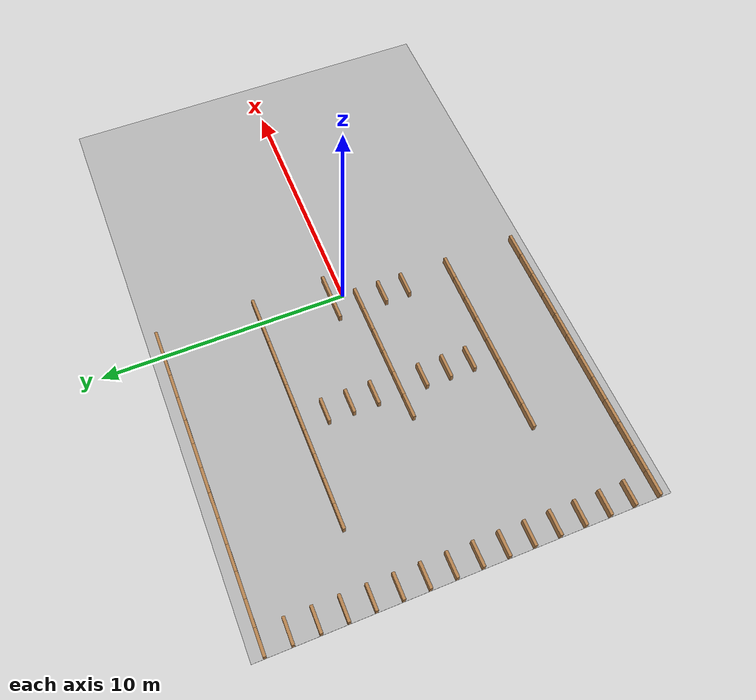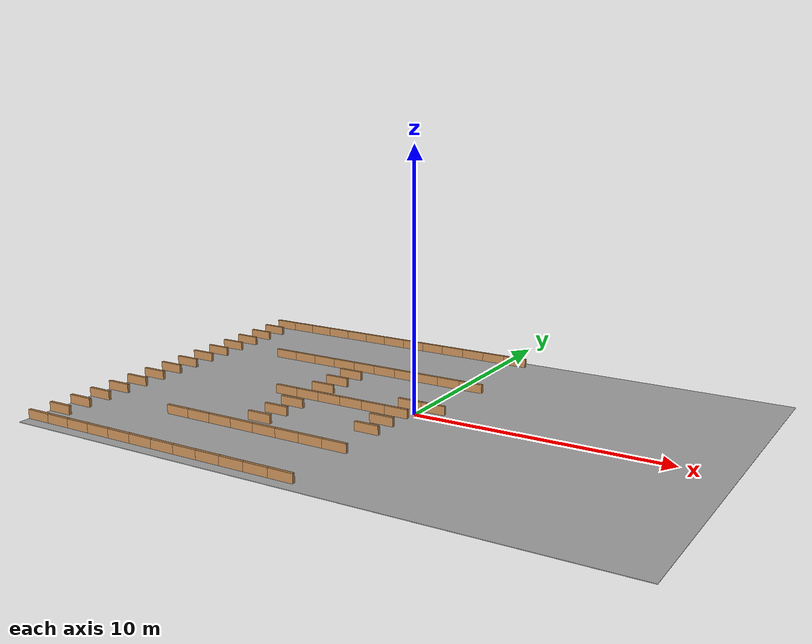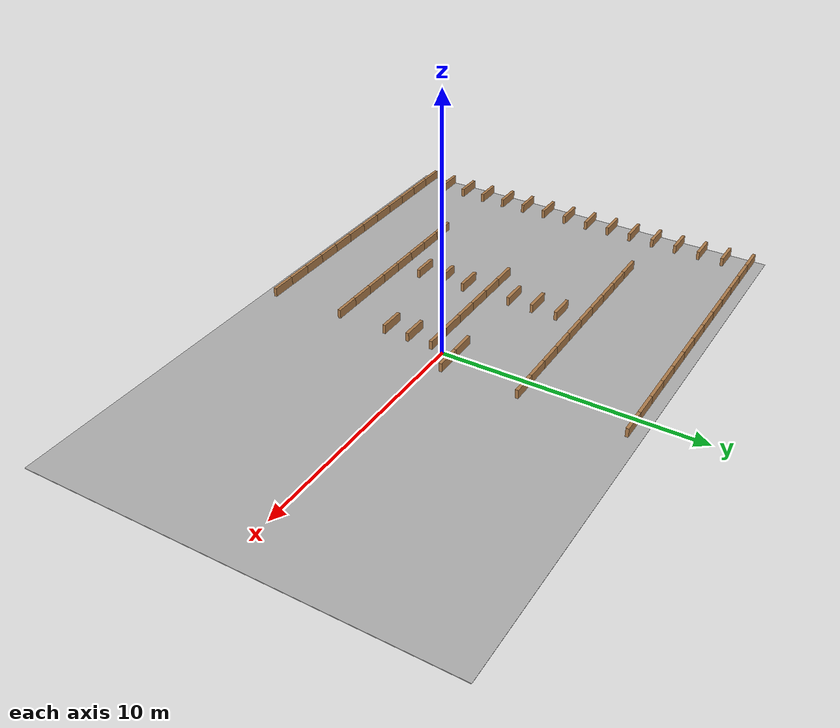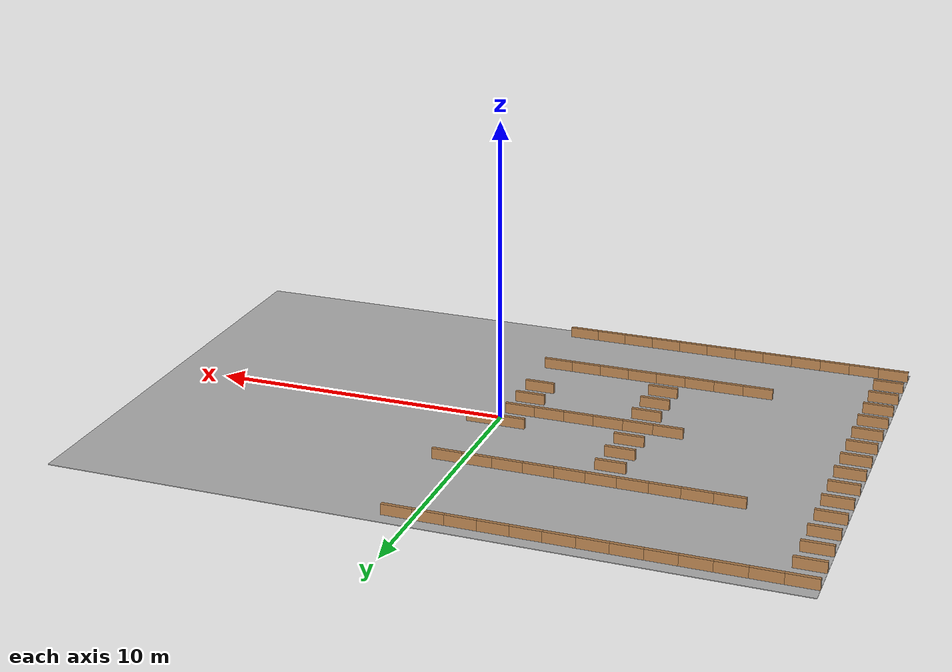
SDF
<sdf version="1.7">
 <world name="default">
  <include><uri>model://sun</uri></include>
  <model name="floor">
   <pose>0 0 -0.01 0 0 0</pose>
   <static>true</static>
   <link name="link">
    <collision name="col"><geometry><box><size>24.0 16.0 0.02</size></box></geometry></collision>
    <visual name="vis">
     <geometry><box><size>24.0 16.0 0.02</size></box></geometry>
     <material>
      <ambient>0.3 0.3 0.3 1</ambient>
      <diffuse>0.7 0.7 0.7 1</diffuse>
      <specular>0.1 0.1 0.1 1</specular>
     </material>
    </visual>
   </link>
  </model>
  <model name="wall_r0_c0">
   <pose>-11.5 7.5 0.175 0 0 0</pose>
   <static>true</static>
   <link name="link">
    <collision name="col"><geometry><box><size>1.0 0.12 0.35</size></box></geometry></collision>
    <visual name="vis">
     <geometry><box><size>1.0 0.12 0.35</size></box></geometry>
     <material>
      <ambient>0.3 0.2 0.1 1</ambient>
      <diffuse>0.7 0.5 0.3 1</diffuse>
      <specular>0.1 0.1 0.1 1</specular>
     </material>
    </visual>
   </link>
  </model>
  <model name="wall_r0_c1">
   <pose>-10.5 7.5 0.175 0 0 0</pose>
   <static>true</static>
   <link name="link">
    <collision name="col"><geometry><box><size>1.0 0.12 0.35</size></box></geometry></collision>
    <visual name="vis">
     <geometry><box><size>1.0 0.12 0.35</size></box></geometry>
     <material>
      <ambient>0.3 0.2 0.1 1</ambient>
      <diffuse>0.7 0.5 0.3 1</diffuse>
      <specular>0.1 0.1 0.1 1</specular>
     </material>
    </visual>
   </link>
  </model>
  <model name="wall_r0_c2">
   <pose>-9.5 7.5 0.175 0 0 0</pose>
   <static>true</static>
   <link name="link">
    <collision name="col"><geometry><box><size>1.0 0.12 0.35</size></box></geometry></collision>
    <visual name="vis">
     <geometry><box><size>1.0 0.12 0.35</size></box></geometry>
     <material>
      <ambient>0.3 0.2 0.1 1</ambient>
      <diffuse>0.7 0.5 0.3 1</diffuse>
      <specular>0.1 0.1 0.1 1</specular>
     </material>
    </visual>
   </link>
  </model>
  <model name="wall_r0_c3">
   <pose>-8.5 7.5 0.175 0 0 0</pose>
   <static>true</static>
   <link name="link">
    <collision name="col"><geometry><box><size>1.0 0.12 0.35</size></box></geometry></collision>
    <visual name="vis">
     <geometry><box><size>1.0 0.12 0.35</size></box></geometry>
     <material>
      <ambient>0.3 0.2 0.1 1</ambient>
      <diffuse>0.7 0.5 0.3 1</diffuse>
      <specular>0.1 0.1 0.1 1</specular>
     </material>
    </visual>
   </link>
  </model>
  <model name="wall_r0_c4">
   <pose>-7.5 7.5 0.175 0 0 0</pose>
   <static>true</static>
   <link name="link">
    <collision name="col"><geometry><box><size>1.0 0.12 0.35</size></box></geometry></collision>
    <visual name="vis">
     <geometry><box><size>1.0 0.12 0.35</size></box></geometry>
     <material>
      <ambient>0.3 0.2 0.1 1</ambient>
      <diffuse>0.7 0.5 0.3 1</diffuse>
      <specular>0.1 0.1 0.1 1</specular>
     </material>
    </visual>
   </link>
  </model>
  <model name="wall_r0_c5">
   <pose>-6.5 7.5 0.175 0 0 0</pose>
   <static>true</static>
   <link name="link">
    <collision name="col"><geometry><box><size>1.0 0.12 0.35</size></box></geometry></collision>
    <visual name="vis">
     <geometry><box><size>1.0 0.12 0.35</size></box></geometry>
     <material>
      <ambient>0.3 0.2 0.1 1</ambient>
      <diffuse>0.7 0.5 0.3 1</diffuse>
      <specular>0.1 0.1 0.1 1</specular>
     </material>
    </visual>
   </link>
  </model>
  <model name="wall_r0_c6">
   <pose>-5.5 7.5 0.175 0 0 0</pose>
   <static>true</static>
   <link name="link">
    <collision name="col"><geometry><box><size>1.0 0.12 0.35</size></box></geometry></collision>
    <visual name="vis">
     <geometry><box><size>1.0 0.12 0.35</size></box></geometry>
     <material>
      <ambient>0.3 0.2 0.1 1</ambient>
      <diffuse>0.7 0.5 0.3 1</diffuse>
      <specular>0.1 0.1 0.1 1</specular>
     </material>
    </visual>
   </link>
  </model>
  <model name="wall_r0_c7">
   <pose>-4.5 7.5 0.175 0 0 0</pose>
   <static>true</static>
   <link name="link">
    <collision name="col"><geometry><box><size>1.0 0.12 0.35</size></box></geometry></collision>
    <visual name="vis">
     <geometry><box><size>1.0 0.12 0.35</size></box></geometry>
     <material>
      <ambient>0.3 0.2 0.1 1</ambient>
      <diffuse>0.7 0.5 0.3 1</diffuse>
      <specular>0.1 0.1 0.1 1</specular>
     </material>
    </visual>
   </link>
  </model>
  <model name="wall_r0_c8">
   <pose>-3.5 7.5 0.175 0 0 0</pose>
   <static>true</static>
   <link name="link">
    <collision name="col"><geometry><box><size>1.0 0.12 0.35</size></box></geometry></collision>
    <visual name="vis">
     <geometry><box><size>1.0 0.12 0.35</size></box></geometry>
     <material>
      <ambient>0.3 0.2 0.1 1</ambient>
      <diffuse>0.7 0.5 0.3 1</diffuse>
      <specular>0.1 0.1 0.1 1</specular>
     </material>
    </visual>
   </link>
  </model>
  <model name="wall_r0_c9">
   <pose>-2.5 7.5 0.175 0 0 0</pose>
   <static>true</static>
   <link name="link">
    <collision name="col"><geometry><box><size>1.0 0.12 0.35</size></box></geometry></collision>
    <visual name="vis">
     <geometry><box><size>1.0 0.12 0.35</size></box></geometry>
     <material>
      <ambient>0.3 0.2 0.1 1</ambient>
      <diffuse>0.7 0.5 0.3 1</diffuse>
      <specular>0.1 0.1 0.1 1</specular>
     </material>
    </visual>
   </link>
  </model>
  <model name="wall_r0_c10">
   <pose>-1.5 7.5 0.175 0 0 0</pose>
   <static>true</static>
   <link name="link">
    <collision name="col"><geometry><box><size>1.0 0.12 0.35</size></box></geometry></collision>
    <visual name="vis">
     <geometry><box><size>1.0 0.12 0.35</size></box></geometry>
     <material>
      <ambient>0.3 0.2 0.1 1</ambient>
      <diffuse>0.7 0.5 0.3 1</diffuse>
      <specular>0.1 0.1 0.1 1</specular>
     </material>
    </visual>
   </link>
  </model>
  <model name="wall_r0_c11">
   <pose>-0.5 7.5 0.175 0 0 0</pose>
   <static>true</static>
   <link name="link">
    <collision name="col"><geometry><box><size>1.0 0.12 0.35</size></box></geometry></collision>
    <visual name="vis">
     <geometry><box><size>1.0 0.12 0.35</size></box></geometry>
     <material>
      <ambient>0.3 0.2 0.1 1</ambient>
      <diffuse>0.7 0.5 0.3 1</diffuse>
      <specular>0.1 0.1 0.1 1</specular>
     </material>
    </visual>
   </link>
  </model>
  <model name="wall_r0_c12">
   <pose>0.5 7.5 0.175 0 0 0</pose>
   <static>true</static>
   <link name="link">
    <collision name="col"><geometry><box><size>1.0 0.12 0.35</size></box></geometry></collision>
    <visual name="vis">
     <geometry><box><size>1.0 0.12 0.35</size></box></geometry>
     <material>
      <ambient>0.3 0.2 0.1 1</ambient>
      <diffuse>0.7 0.5 0.3 1</diffuse>
      <specular>0.1 0.1 0.1 1</specular>
     </material>
    </visual>
   </link>
  </model>
  <model name="wall_r1_c0">
   <pose>-11.5 6.5 0.175 0 0 0</pose>
   <static>true</static>
   <link name="link">
    <collision name="col"><geometry><box><size>1.0 0.12 0.35</size></box></geometry></collision>
    <visual name="vis">
     <geometry><box><size>1.0 0.12 0.35</size></box></geometry>
     <material>
      <ambient>0.3 0.2 0.1 1</ambient>
      <diffuse>0.7 0.5 0.3 1</diffuse>
      <specular>0.1 0.1 0.1 1</specular>
     </material>
    </visual>
   </link>
  </model>
  <model name="wall_r2_c0">
   <pose>-11.5 5.5 0.175 0 0 0</pose>
   <static>true</static>
   <link name="link">
    <collision name="col"><geometry><box><size>1.0 0.12 0.35</size></box></geometry></collision>
    <visual name="vis">
     <geometry><box><size>1.0 0.12 0.35</size></box></geometry>
     <material>
      <ambient>0.3 0.2 0.1 1</ambient>
      <diffuse>0.7 0.5 0.3 1</diffuse>
      <specular>0.1 0.1 0.1 1</specular>
     </material>
    </visual>
   </link>
  </model>
  <model name="wall_r3_c0">
   <pose>-11.5 4.5 0.175 0 0 0</pose>
   <static>true</static>
   <link name="link">
    <collision name="col"><geometry><box><size>1.0 0.12 0.35</size></box></geometry></collision>
    <visual name="vis">
     <geometry><box><size>1.0 0.12 0.35</size></box></geometry>
     <material>
      <ambient>0.3 0.2 0.1 1</ambient>
      <diffuse>0.7 0.5 0.3 1</diffuse>
      <specular>0.1 0.1 0.1 1</specular>
     </material>
    </visual>
   </link>
  </model>
  <model name="wall_r4_c0">
   <pose>-11.5 3.5 0.175 0 0 0</pose>
   <static>true</static>
   <link name="link">
    <collision name="col"><geometry><box><size>1.0 0.12 0.35</size></box></geometry></collision>
    <visual name="vis">
     <geometry><box><size>1.0 0.12 0.35</size></box></geometry>
     <material>
      <ambient>0.3 0.2 0.1 1</ambient>
      <diffuse>0.7 0.5 0.3 1</diffuse>
      <specular>0.1 0.1 0.1 1</specular>
     </material>
    </visual>
   </link>
  </model>
  <model name="wall_r4_c3">
   <pose>-8.5 3.5 0.175 0 0 0</pose>
   <static>true</static>
   <link name="link">
    <collision name="col"><geometry><box><size>1.0 0.12 0.35</size></box></geometry></collision>
    <visual name="vis">
     <geometry><box><size>1.0 0.12 0.35</size></box></geometry>
     <material>
      <ambient>0.3 0.2 0.1 1</ambient>
      <diffuse>0.7 0.5 0.3 1</diffuse>
      <specular>0.1 0.1 0.1 1</specular>
     </material>
    </visual>
   </link>
  </model>
  <model name="wall_r4_c4">
   <pose>-7.5 3.5 0.175 0 0 0</pose>
   <static>true</static>
   <link name="link">
    <collision name="col"><geometry><box><size>1.0 0.12 0.35</size></box></geometry></collision>
    <visual name="vis">
     <geometry><box><size>1.0 0.12 0.35</size></box></geometry>
     <material>
      <ambient>0.3 0.2 0.1 1</ambient>
      <diffuse>0.7 0.5 0.3 1</diffuse>
      <specular>0.1 0.1 0.1 1</specular>
     </material>
    </visual>
   </link>
  </model>
  <model name="wall_r4_c5">
   <pose>-6.5 3.5 0.175 0 0 0</pose>
   <static>true</static>
   <link name="link">
    <collision name="col"><geometry><box><size>1.0 0.12 0.35</size></box></geometry></collision>
    <visual name="vis">
     <geometry><box><size>1.0 0.12 0.35</size></box></geometry>
     <material>
      <ambient>0.3 0.2 0.1 1</ambient>
      <diffuse>0.7 0.5 0.3 1</diffuse>
      <specular>0.1 0.1 0.1 1</specular>
     </material>
    </visual>
   </link>
  </model>
  <model name="wall_r4_c6">
   <pose>-5.5 3.5 0.175 0 0 0</pose>
   <static>true</static>
   <link name="link">
    <collision name="col"><geometry><box><size>1.0 0.12 0.35</size></box></geometry></collision>
    <visual name="vis">
     <geometry><box><size>1.0 0.12 0.35</size></box></geometry>
     <material>
      <ambient>0.3 0.2 0.1 1</ambient>
      <diffuse>0.7 0.5 0.3 1</diffuse>
      <specular>0.1 0.1 0.1 1</specular>
     </material>
    </visual>
   </link>
  </model>
  <model name="wall_r4_c7">
   <pose>-4.5 3.5 0.175 0 0 0</pose>
   <static>true</static>
   <link name="link">
    <collision name="col"><geometry><box><size>1.0 0.12 0.35</size></box></geometry></collision>
    <visual name="vis">
     <geometry><box><size>1.0 0.12 0.35</size></box></geometry>
     <material>
      <ambient>0.3 0.2 0.1 1</ambient>
      <diffuse>0.7 0.5 0.3 1</diffuse>
      <specular>0.1 0.1 0.1 1</specular>
     </material>
    </visual>
   </link>
  </model>
  <model name="wall_r4_c8">
   <pose>-3.5 3.5 0.175 0 0 0</pose>
   <static>true</static>
   <link name="link">
    <collision name="col"><geometry><box><size>1.0 0.12 0.35</size></box></geometry></collision>
    <visual name="vis">
     <geometry><box><size>1.0 0.12 0.35</size></box></geometry>
     <material>
      <ambient>0.3 0.2 0.1 1</ambient>
      <diffuse>0.7 0.5 0.3 1</diffuse>
      <specular>0.1 0.1 0.1 1</specular>
     </material>
    </visual>
   </link>
  </model>
  <model name="wall_r4_c9">
   <pose>-2.5 3.5 0.175 0 0 0</pose>
   <static>true</static>
   <link name="link">
    <collision name="col"><geometry><box><size>1.0 0.12 0.35</size></box></geometry></collision>
    <visual name="vis">
     <geometry><box><size>1.0 0.12 0.35</size></box></geometry>
     <material>
      <ambient>0.3 0.2 0.1 1</ambient>
      <diffuse>0.7 0.5 0.3 1</diffuse>
      <specular>0.1 0.1 0.1 1</specular>
     </material>
    </visual>
   </link>
  </model>
  <model name="wall_r4_c10">
   <pose>-1.5 3.5 0.175 0 0 0</pose>
   <static>true</static>
   <link name="link">
    <collision name="col"><geometry><box><size>1.0 0.12 0.35</size></box></geometry></collision>
    <visual name="vis">
     <geometry><box><size>1.0 0.12 0.35</size></box></geometry>
     <material>
      <ambient>0.3 0.2 0.1 1</ambient>
      <diffuse>0.7 0.5 0.3 1</diffuse>
      <specular>0.1 0.1 0.1 1</specular>
     </material>
    </visual>
   </link>
  </model>
  <model name="wall_r4_c11">
   <pose>-0.5 3.5 0.175 0 0 0</pose>
   <static>true</static>
   <link name="link">
    <collision name="col"><geometry><box><size>1.0 0.12 0.35</size></box></geometry></collision>
    <visual name="vis">
     <geometry><box><size>1.0 0.12 0.35</size></box></geometry>
     <material>
      <ambient>0.3 0.2 0.1 1</ambient>
      <diffuse>0.7 0.5 0.3 1</diffuse>
      <specular>0.1 0.1 0.1 1</specular>
     </material>
    </visual>
   </link>
  </model>
  <model name="wall_r4_c12">
   <pose>0.5 3.5 0.175 0 0 0</pose>
   <static>true</static>
   <link name="link">
    <collision name="col"><geometry><box><size>1.0 0.12 0.35</size></box></geometry></collision>
    <visual name="vis">
     <geometry><box><size>1.0 0.12 0.35</size></box></geometry>
     <material>
      <ambient>0.3 0.2 0.1 1</ambient>
      <diffuse>0.7 0.5 0.3 1</diffuse>
      <specular>0.1 0.1 0.1 1</specular>
     </material>
    </visual>
   </link>
  </model>
  <model name="wall_r5_c0">
   <pose>-11.5 2.5 0.175 0 0 0</pose>
   <static>true</static>
   <link name="link">
    <collision name="col"><geometry><box><size>1.0 0.12 0.35</size></box></geometry></collision>
    <visual name="vis">
     <geometry><box><size>1.0 0.12 0.35</size></box></geometry>
     <material>
      <ambient>0.3 0.2 0.1 1</ambient>
      <diffuse>0.7 0.5 0.3 1</diffuse>
      <specular>0.1 0.1 0.1 1</specular>
     </material>
    </visual>
   </link>
  </model>
  <model name="wall_r5_c7">
   <pose>-4.5 2.5 0.175 0 0 0</pose>
   <static>true</static>
   <link name="link">
    <collision name="col"><geometry><box><size>1.0 0.12 0.35</size></box></geometry></collision>
    <visual name="vis">
     <geometry><box><size>1.0 0.12 0.35</size></box></geometry>
     <material>
      <ambient>0.3 0.2 0.1 1</ambient>
      <diffuse>0.7 0.5 0.3 1</diffuse>
      <specular>0.1 0.1 0.1 1</specular>
     </material>
    </visual>
   </link>
  </model>
  <model name="wall_r6_c0">
   <pose>-11.5 1.5 0.175 0 0 0</pose>
   <static>true</static>
   <link name="link">
    <collision name="col"><geometry><box><size>1.0 0.12 0.35</size></box></geometry></collision>
    <visual name="vis">
     <geometry><box><size>1.0 0.12 0.35</size></box></geometry>
     <material>
      <ambient>0.3 0.2 0.1 1</ambient>
      <diffuse>0.7 0.5 0.3 1</diffuse>
      <specular>0.1 0.1 0.1 1</specular>
     </material>
    </visual>
   </link>
  </model>
  <model name="wall_r6_c7">
   <pose>-4.5 1.5 0.175 0 0 0</pose>
   <static>true</static>
   <link name="link">
    <collision name="col"><geometry><box><size>1.0 0.12 0.35</size></box></geometry></collision>
    <visual name="vis">
     <geometry><box><size>1.0 0.12 0.35</size></box></geometry>
     <material>
      <ambient>0.3 0.2 0.1 1</ambient>
      <diffuse>0.7 0.5 0.3 1</diffuse>
      <specular>0.1 0.1 0.1 1</specular>
     </material>
    </visual>
   </link>
  </model>
  <model name="wall_r7_c0">
   <pose>-11.5 0.5 0.175 0 0 0</pose>
   <static>true</static>
   <link name="link">
    <collision name="col"><geometry><box><size>1.0 0.12 0.35</size></box></geometry></collision>
    <visual name="vis">
     <geometry><box><size>1.0 0.12 0.35</size></box></geometry>
     <material>
      <ambient>0.3 0.2 0.1 1</ambient>
      <diffuse>0.7 0.5 0.3 1</diffuse>
      <specular>0.1 0.1 0.1 1</specular>
     </material>
    </visual>
   </link>
  </model>
  <model name="wall_r7_c7">
   <pose>-4.5 0.5 0.175 0 0 0</pose>
   <static>true</static>
   <link name="link">
    <collision name="col"><geometry><box><size>1.0 0.12 0.35</size></box></geometry></collision>
    <visual name="vis">
     <geometry><box><size>1.0 0.12 0.35</size></box></geometry>
     <material>
      <ambient>0.3 0.2 0.1 1</ambient>
      <diffuse>0.7 0.5 0.3 1</diffuse>
      <specular>0.1 0.1 0.1 1</specular>
     </material>
    </visual>
   </link>
  </model>
  <model name="wall_r7_c11">
   <pose>-0.5 0.5 0.175 0 0 0</pose>
   <static>true</static>
   <link name="link">
    <collision name="col"><geometry><box><size>1.0 0.12 0.35</size></box></geometry></collision>
    <visual name="vis">
     <geometry><box><size>1.0 0.12 0.35</size></box></geometry>
     <material>
      <ambient>0.3 0.2 0.1 1</ambient>
      <diffuse>0.7 0.5 0.3 1</diffuse>
      <specular>0.1 0.1 0.1 1</specular>
     </material>
    </visual>
   </link>
  </model>
  <model name="wall_r7_c12">
   <pose>0.5 0.5 0.175 0 0 0</pose>
   <static>true</static>
   <link name="link">
    <collision name="col"><geometry><box><size>1.0 0.12 0.35</size></box></geometry></collision>
    <visual name="vis">
     <geometry><box><size>1.0 0.12 0.35</size></box></geometry>
     <material>
      <ambient>0.3 0.2 0.1 1</ambient>
      <diffuse>0.7 0.5 0.3 1</diffuse>
      <specular>0.1 0.1 0.1 1</specular>
     </material>
    </visual>
   </link>
  </model>
  <model name="wall_r8_c0">
   <pose>-11.5 -0.5 0.175 0 0 0</pose>
   <static>true</static>
   <link name="link">
    <collision name="col"><geometry><box><size>1.0 0.12 0.35</size></box></geometry></collision>
    <visual name="vis">
     <geometry><box><size>1.0 0.12 0.35</size></box></geometry>
     <material>
      <ambient>0.3 0.2 0.1 1</ambient>
      <diffuse>0.7 0.5 0.3 1</diffuse>
      <specular>0.1 0.1 0.1 1</specular>
     </material>
    </visual>
   </link>
  </model>
  <model name="wall_r8_c6">
   <pose>-5.5 -0.5 0.175 0 0 0</pose>
   <static>true</static>
   <link name="link">
    <collision name="col"><geometry><box><size>1.0 0.12 0.35</size></box></geometry></collision>
    <visual name="vis">
     <geometry><box><size>1.0 0.12 0.35</size></box></geometry>
     <material>
      <ambient>0.3 0.2 0.1 1</ambient>
      <diffuse>0.7 0.5 0.3 1</diffuse>
      <specular>0.1 0.1 0.1 1</specular>
     </material>
    </visual>
   </link>
  </model>
  <model name="wall_r8_c7">
   <pose>-4.5 -0.5 0.175 0 0 0</pose>
   <static>true</static>
   <link name="link">
    <collision name="col"><geometry><box><size>1.0 0.12 0.35</size></box></geometry></collision>
    <visual name="vis">
     <geometry><box><size>1.0 0.12 0.35</size></box></geometry>
     <material>
      <ambient>0.3 0.2 0.1 1</ambient>
      <diffuse>0.7 0.5 0.3 1</diffuse>
      <specular>0.1 0.1 0.1 1</specular>
     </material>
    </visual>
   </link>
  </model>
  <model name="wall_r8_c8">
   <pose>-3.5 -0.5 0.175 0 0 0</pose>
   <static>true</static>
   <link name="link">
    <collision name="col"><geometry><box><size>1.0 0.12 0.35</size></box></geometry></collision>
    <visual name="vis">
     <geometry><box><size>1.0 0.12 0.35</size></box></geometry>
     <material>
      <ambient>0.3 0.2 0.1 1</ambient>
      <diffuse>0.7 0.5 0.3 1</diffuse>
      <specular>0.1 0.1 0.1 1</specular>
     </material>
    </visual>
   </link>
  </model>
  <model name="wall_r8_c9">
   <pose>-2.5 -0.5 0.175 0 0 0</pose>
   <static>true</static>
   <link name="link">
    <collision name="col"><geometry><box><size>1.0 0.12 0.35</size></box></geometry></collision>
    <visual name="vis">
     <geometry><box><size>1.0 0.12 0.35</size></box></geometry>
     <material>
      <ambient>0.3 0.2 0.1 1</ambient>
      <diffuse>0.7 0.5 0.3 1</diffuse>
      <specular>0.1 0.1 0.1 1</specular>
     </material>
    </visual>
   </link>
  </model>
  <model name="wall_r8_c10">
   <pose>-1.5 -0.5 0.175 0 0 0</pose>
   <static>true</static>
   <link name="link">
    <collision name="col"><geometry><box><size>1.0 0.12 0.35</size></box></geometry></collision>
    <visual name="vis">
     <geometry><box><size>1.0 0.12 0.35</size></box></geometry>
     <material>
      <ambient>0.3 0.2 0.1 1</ambient>
      <diffuse>0.7 0.5 0.3 1</diffuse>
      <specular>0.1 0.1 0.1 1</specular>
     </material>
    </visual>
   </link>
  </model>
  <model name="wall_r8_c11">
   <pose>-0.5 -0.5 0.175 0 0 0</pose>
   <static>true</static>
   <link name="link">
    <collision name="col"><geometry><box><size>1.0 0.12 0.35</size></box></geometry></collision>
    <visual name="vis">
     <geometry><box><size>1.0 0.12 0.35</size></box></geometry>
     <material>
      <ambient>0.3 0.2 0.1 1</ambient>
      <diffuse>0.7 0.5 0.3 1</diffuse>
      <specular>0.1 0.1 0.1 1</specular>
     </material>
    </visual>
   </link>
  </model>
  <model name="wall_r9_c0">
   <pose>-11.5 -1.5 0.175 0 0 0</pose>
   <static>true</static>
   <link name="link">
    <collision name="col"><geometry><box><size>1.0 0.12 0.35</size></box></geometry></collision>
    <visual name="vis">
     <geometry><box><size>1.0 0.12 0.35</size></box></geometry>
     <material>
      <ambient>0.3 0.2 0.1 1</ambient>
      <diffuse>0.7 0.5 0.3 1</diffuse>
      <specular>0.1 0.1 0.1 1</specular>
     </material>
    </visual>
   </link>
  </model>
  <model name="wall_r9_c7">
   <pose>-4.5 -1.5 0.175 0 0 0</pose>
   <static>true</static>
   <link name="link">
    <collision name="col"><geometry><box><size>1.0 0.12 0.35</size></box></geometry></collision>
    <visual name="vis">
     <geometry><box><size>1.0 0.12 0.35</size></box></geometry>
     <material>
      <ambient>0.3 0.2 0.1 1</ambient>
      <diffuse>0.7 0.5 0.3 1</diffuse>
      <specular>0.1 0.1 0.1 1</specular>
     </material>
    </visual>
   </link>
  </model>
  <model name="wall_r9_c11">
   <pose>-0.5 -1.5 0.175 0 0 0</pose>
   <static>true</static>
   <link name="link">
    <collision name="col"><geometry><box><size>1.0 0.12 0.35</size></box></geometry></collision>
    <visual name="vis">
     <geometry><box><size>1.0 0.12 0.35</size></box></geometry>
     <material>
      <ambient>0.3 0.2 0.1 1</ambient>
      <diffuse>0.7 0.5 0.3 1</diffuse>
      <specular>0.1 0.1 0.1 1</specular>
     </material>
    </visual>
   </link>
  </model>
  <model name="wall_r10_c0">
   <pose>-11.5 -2.5 0.175 0 0 0</pose>
   <static>true</static>
   <link name="link">
    <collision name="col"><geometry><box><size>1.0 0.12 0.35</size></box></geometry></collision>
    <visual name="vis">
     <geometry><box><size>1.0 0.12 0.35</size></box></geometry>
     <material>
      <ambient>0.3 0.2 0.1 1</ambient>
      <diffuse>0.7 0.5 0.3 1</diffuse>
      <specular>0.1 0.1 0.1 1</specular>
     </material>
    </visual>
   </link>
  </model>
  <model name="wall_r10_c7">
   <pose>-4.5 -2.5 0.175 0 0 0</pose>
   <static>true</static>
   <link name="link">
    <collision name="col"><geometry><box><size>1.0 0.12 0.35</size></box></geometry></collision>
    <visual name="vis">
     <geometry><box><size>1.0 0.12 0.35</size></box></geometry>
     <material>
      <ambient>0.3 0.2 0.1 1</ambient>
      <diffuse>0.7 0.5 0.3 1</diffuse>
      <specular>0.1 0.1 0.1 1</specular>
     </material>
    </visual>
   </link>
  </model>
  <model name="wall_r10_c11">
   <pose>-0.5 -2.5 0.175 0 0 0</pose>
   <static>true</static>
   <link name="link">
    <collision name="col"><geometry><box><size>1.0 0.12 0.35</size></box></geometry></collision>
    <visual name="vis">
     <geometry><box><size>1.0 0.12 0.35</size></box></geometry>
     <material>
      <ambient>0.3 0.2 0.1 1</ambient>
      <diffuse>0.7 0.5 0.3 1</diffuse>
      <specular>0.1 0.1 0.1 1</specular>
     </material>
    </visual>
   </link>
  </model>
  <model name="wall_r11_c0">
   <pose>-11.5 -3.5 0.175 0 0 0</pose>
   <static>true</static>
   <link name="link">
    <collision name="col"><geometry><box><size>1.0 0.12 0.35</size></box></geometry></collision>
    <visual name="vis">
     <geometry><box><size>1.0 0.12 0.35</size></box></geometry>
     <material>
      <ambient>0.3 0.2 0.1 1</ambient>
      <diffuse>0.7 0.5 0.3 1</diffuse>
      <specular>0.1 0.1 0.1 1</specular>
     </material>
    </visual>
   </link>
  </model>
  <model name="wall_r11_c7">
   <pose>-4.5 -3.5 0.175 0 0 0</pose>
   <static>true</static>
   <link name="link">
    <collision name="col"><geometry><box><size>1.0 0.12 0.35</size></box></geometry></collision>
    <visual name="vis">
     <geometry><box><size>1.0 0.12 0.35</size></box></geometry>
     <material>
      <ambient>0.3 0.2 0.1 1</ambient>
      <diffuse>0.7 0.5 0.3 1</diffuse>
      <specular>0.1 0.1 0.1 1</specular>
     </material>
    </visual>
   </link>
  </model>
  <model name="wall_r12_c0">
   <pose>-11.5 -4.5 0.175 0 0 0</pose>
   <static>true</static>
   <link name="link">
    <collision name="col"><geometry><box><size>1.0 0.12 0.35</size></box></geometry></collision>
    <visual name="vis">
     <geometry><box><size>1.0 0.12 0.35</size></box></geometry>
     <material>
      <ambient>0.3 0.2 0.1 1</ambient>
      <diffuse>0.7 0.5 0.3 1</diffuse>
      <specular>0.1 0.1 0.1 1</specular>
     </material>
    </visual>
   </link>
  </model>
  <model name="wall_r12_c4">
   <pose>-7.5 -4.5 0.175 0 0 0</pose>
   <static>true</static>
   <link name="link">
    <collision name="col"><geometry><box><size>1.0 0.12 0.35</size></box></geometry></collision>
    <visual name="vis">
     <geometry><box><size>1.0 0.12 0.35</size></box></geometry>
     <material>
      <ambient>0.3 0.2 0.1 1</ambient>
      <diffuse>0.7 0.5 0.3 1</diffuse>
      <specular>0.1 0.1 0.1 1</specular>
     </material>
    </visual>
   </link>
  </model>
  <model name="wall_r12_c5">
   <pose>-6.5 -4.5 0.175 0 0 0</pose>
   <static>true</static>
   <link name="link">
    <collision name="col"><geometry><box><size>1.0 0.12 0.35</size></box></geometry></collision>
    <visual name="vis">
     <geometry><box><size>1.0 0.12 0.35</size></box></geometry>
     <material>
      <ambient>0.3 0.2 0.1 1</ambient>
      <diffuse>0.7 0.5 0.3 1</diffuse>
      <specular>0.1 0.1 0.1 1</specular>
     </material>
    </visual>
   </link>
  </model>
  <model name="wall_r12_c6">
   <pose>-5.5 -4.5 0.175 0 0 0</pose>
   <static>true</static>
   <link name="link">
    <collision name="col"><geometry><box><size>1.0 0.12 0.35</size></box></geometry></collision>
    <visual name="vis">
     <geometry><box><size>1.0 0.12 0.35</size></box></geometry>
     <material>
      <ambient>0.3 0.2 0.1 1</ambient>
      <diffuse>0.7 0.5 0.3 1</diffuse>
      <specular>0.1 0.1 0.1 1</specular>
     </material>
    </visual>
   </link>
  </model>
  <model name="wall_r12_c7">
   <pose>-4.5 -4.5 0.175 0 0 0</pose>
   <static>true</static>
   <link name="link">
    <collision name="col"><geometry><box><size>1.0 0.12 0.35</size></box></geometry></collision>
    <visual name="vis">
     <geometry><box><size>1.0 0.12 0.35</size></box></geometry>
     <material>
      <ambient>0.3 0.2 0.1 1</ambient>
      <diffuse>0.7 0.5 0.3 1</diffuse>
      <specular>0.1 0.1 0.1 1</specular>
     </material>
    </visual>
   </link>
  </model>
  <model name="wall_r12_c8">
   <pose>-3.5 -4.5 0.175 0 0 0</pose>
   <static>true</static>
   <link name="link">
    <collision name="col"><geometry><box><size>1.0 0.12 0.35</size></box></geometry></collision>
    <visual name="vis">
     <geometry><box><size>1.0 0.12 0.35</size></box></geometry>
     <material>
      <ambient>0.3 0.2 0.1 1</ambient>
      <diffuse>0.7 0.5 0.3 1</diffuse>
      <specular>0.1 0.1 0.1 1</specular>
     </material>
    </visual>
   </link>
  </model>
  <model name="wall_r12_c9">
   <pose>-2.5 -4.5 0.175 0 0 0</pose>
   <static>true</static>
   <link name="link">
    <collision name="col"><geometry><box><size>1.0 0.12 0.35</size></box></geometry></collision>
    <visual name="vis">
     <geometry><box><size>1.0 0.12 0.35</size></box></geometry>
     <material>
      <ambient>0.3 0.2 0.1 1</ambient>
      <diffuse>0.7 0.5 0.3 1</diffuse>
      <specular>0.1 0.1 0.1 1</specular>
     </material>
    </visual>
   </link>
  </model>
  <model name="wall_r12_c10">
   <pose>-1.5 -4.5 0.175 0 0 0</pose>
   <static>true</static>
   <link name="link">
    <collision name="col"><geometry><box><size>1.0 0.12 0.35</size></box></geometry></collision>
    <visual name="vis">
     <geometry><box><size>1.0 0.12 0.35</size></box></geometry>
     <material>
      <ambient>0.3 0.2 0.1 1</ambient>
      <diffuse>0.7 0.5 0.3 1</diffuse>
      <specular>0.1 0.1 0.1 1</specular>
     </material>
    </visual>
   </link>
  </model>
  <model name="wall_r12_c11">
   <pose>-0.5 -4.5 0.175 0 0 0</pose>
   <static>true</static>
   <link name="link">
    <collision name="col"><geometry><box><size>1.0 0.12 0.35</size></box></geometry></collision>
    <visual name="vis">
     <geometry><box><size>1.0 0.12 0.35</size></box></geometry>
     <material>
      <ambient>0.3 0.2 0.1 1</ambient>
      <diffuse>0.7 0.5 0.3 1</diffuse>
      <specular>0.1 0.1 0.1 1</specular>
     </material>
    </visual>
   </link>
  </model>
  <model name="wall_r13_c0">
   <pose>-11.5 -5.5 0.175 0 0 0</pose>
   <static>true</static>
   <link name="link">
    <collision name="col"><geometry><box><size>1.0 0.12 0.35</size></box></geometry></collision>
    <visual name="vis">
     <geometry><box><size>1.0 0.12 0.35</size></box></geometry>
     <material>
      <ambient>0.3 0.2 0.1 1</ambient>
      <diffuse>0.7 0.5 0.3 1</diffuse>
      <specular>0.1 0.1 0.1 1</specular>
     </material>
    </visual>
   </link>
  </model>
  <model name="wall_r14_c0">
   <pose>-11.5 -6.5 0.175 0 0 0</pose>
   <static>true</static>
   <link name="link">
    <collision name="col"><geometry><box><size>1.0 0.12 0.35</size></box></geometry></collision>
    <visual name="vis">
     <geometry><box><size>1.0 0.12 0.35</size></box></geometry>
     <material>
      <ambient>0.3 0.2 0.1 1</ambient>
      <diffuse>0.7 0.5 0.3 1</diffuse>
      <specular>0.1 0.1 0.1 1</specular>
     </material>
    </visual>
   </link>
  </model>
  <model name="wall_r15_c0">
   <pose>-11.5 -7.5 0.175 0 0 0</pose>
   <static>true</static>
   <link name="link">
    <collision name="col"><geometry><box><size>1.0 0.12 0.35</size></box></geometry></collision>
    <visual name="vis">
     <geometry><box><size>1.0 0.12 0.35</size></box></geometry>
     <material>
      <ambient>0.3 0.2 0.1 1</ambient>
      <diffuse>0.7 0.5 0.3 1</diffuse>
      <specular>0.1 0.1 0.1 1</specular>
     </material>
    </visual>
   </link>
  </model>
  <model name="wall_r15_c1">
   <pose>-10.5 -7.5 0.175 0 0 0</pose>
   <static>true</static>
   <link name="link">
    <collision name="col"><geometry><box><size>1.0 0.12 0.35</size></box></geometry></collision>
    <visual name="vis">
     <geometry><box><size>1.0 0.12 0.35</size></box></geometry>
     <material>
      <ambient>0.3 0.2 0.1 1</ambient>
      <diffuse>0.7 0.5 0.3 1</diffuse>
      <specular>0.1 0.1 0.1 1</specular>
     </material>
    </visual>
   </link>
  </model>
  <model name="wall_r15_c2">
   <pose>-9.5 -7.5 0.175 0 0 0</pose>
   <static>true</static>
   <link name="link">
    <collision name="col"><geometry><box><size>1.0 0.12 0.35</size></box></geometry></collision>
    <visual name="vis">
     <geometry><box><size>1.0 0.12 0.35</size></box></geometry>
     <material>
      <ambient>0.3 0.2 0.1 1</ambient>
      <diffuse>0.7 0.5 0.3 1</diffuse>
      <specular>0.1 0.1 0.1 1</specular>
     </material>
    </visual>
   </link>
  </model>
  <model name="wall_r15_c3">
   <pose>-8.5 -7.5 0.175 0 0 0</pose>
   <static>true</static>
   <link name="link">
    <collision name="col"><geometry><box><size>1.0 0.12 0.35</size></box></geometry></collision>
    <visual name="vis">
     <geometry><box><size>1.0 0.12 0.35</size></box></geometry>
     <material>
      <ambient>0.3 0.2 0.1 1</ambient>
      <diffuse>0.7 0.5 0.3 1</diffuse>
      <specular>0.1 0.1 0.1 1</specular>
     </material>
    </visual>
   </link>
  </model>
  <model name="wall_r15_c4">
   <pose>-7.5 -7.5 0.175 0 0 0</pose>
   <static>true</static>
   <link name="link">
    <collision name="col"><geometry><box><size>1.0 0.12 0.35</size></box></geometry></collision>
    <visual name="vis">
     <geometry><box><size>1.0 0.12 0.35</size></box></geometry>
     <material>
      <ambient>0.3 0.2 0.1 1</ambient>
      <diffuse>0.7 0.5 0.3 1</diffuse>
      <specular>0.1 0.1 0.1 1</specular>
     </material>
    </visual>
   </link>
  </model>
  <model name="wall_r15_c5">
   <pose>-6.5 -7.5 0.175 0 0 0</pose>
   <static>true</static>
   <link name="link">
    <collision name="col"><geometry><box><size>1.0 0.12 0.35</size></box></geometry></collision>
    <visual name="vis">
     <geometry><box><size>1.0 0.12 0.35</size></box></geometry>
     <material>
      <ambient>0.3 0.2 0.1 1</ambient>
      <diffuse>0.7 0.5 0.3 1</diffuse>
      <specular>0.1 0.1 0.1 1</specular>
     </material>
    </visual>
   </link>
  </model>
  <model name="wall_r15_c6">
   <pose>-5.5 -7.5 0.175 0 0 0</pose>
   <static>true</static>
   <link name="link">
    <collision name="col"><geometry><box><size>1.0 0.12 0.35</size></box></geometry></collision>
    <visual name="vis">
     <geometry><box><size>1.0 0.12 0.35</size></box></geometry>
     <material>
      <ambient>0.3 0.2 0.1 1</ambient>
      <diffuse>0.7 0.5 0.3 1</diffuse>
      <specular>0.1 0.1 0.1 1</specular>
     </material>
    </visual>
   </link>
  </model>
  <model name="wall_r15_c7">
   <pose>-4.5 -7.5 0.175 0 0 0</pose>
   <static>true</static>
   <link name="link">
    <collision name="col"><geometry><box><size>1.0 0.12 0.35</size></box></geometry></collision>
    <visual name="vis">
     <geometry><box><size>1.0 0.12 0.35</size></box></geometry>
     <material>
      <ambient>0.3 0.2 0.1 1</ambient>
      <diffuse>0.7 0.5 0.3 1</diffuse>
      <specular>0.1 0.1 0.1 1</specular>
     </material>
    </visual>
   </link>
  </model>
  <model name="wall_r15_c8">
   <pose>-3.5 -7.5 0.175 0 0 0</pose>
   <static>true</static>
   <link name="link">
    <collision name="col"><geometry><box><size>1.0 0.12 0.35</size></box></geometry></collision>
    <visual name="vis">
     <geometry><box><size>1.0 0.12 0.35</size></box></geometry>
     <material>
      <ambient>0.3 0.2 0.1 1</ambient>
      <diffuse>0.7 0.5 0.3 1</diffuse>
      <specular>0.1 0.1 0.1 1</specular>
     </material>
    </visual>
   </link>
  </model>
  <model name="wall_r15_c9">
   <pose>-2.5 -7.5 0.175 0 0 0</pose>
   <static>true</static>
   <link name="link">
    <collision name="col"><geometry><box><size>1.0 0.12 0.35</size></box></geometry></collision>
    <visual name="vis">
     <geometry><box><size>1.0 0.12 0.35</size></box></geometry>
     <material>
      <ambient>0.3 0.2 0.1 1</ambient>
      <diffuse>0.7 0.5 0.3 1</diffuse>
      <specular>0.1 0.1 0.1 1</specular>
     </material>
    </visual>
   </link>
  </model>
  <model name="wall_r15_c10">
   <pose>-1.5 -7.5 0.175 0 0 0</pose>
   <static>true</static>
   <link name="link">
    <collision name="col"><geometry><box><size>1.0 0.12 0.35</size></box></geometry></collision>
    <visual name="vis">
     <geometry><box><size>1.0 0.12 0.35</size></box></geometry>
     <material>
      <ambient>0.3 0.2 0.1 1</ambient>
      <diffuse>0.7 0.5 0.3 1</diffuse>
      <specular>0.1 0.1 0.1 1</specular>
     </material>
    </visual>
   </link>
  </model>
  <model name="wall_r15_c11">
   <pose>-0.5 -7.5 0.175 0 0 0</pose>
   <static>true</static>
   <link name="link">
    <collision name="col"><geometry><box><size>1.0 0.12 0.35</size></box></geometry></collision>
    <visual name="vis">
     <geometry><box><size>1.0 0.12 0.35</size></box></geometry>
     <material>
      <ambient>0.3 0.2 0.1 1</ambient>
      <diffuse>0.7 0.5 0.3 1</diffuse>
      <specular>0.1 0.1 0.1 1</specular>
     </material>
    </visual>
   </link>
  </model>
 </world>
</sdf>
